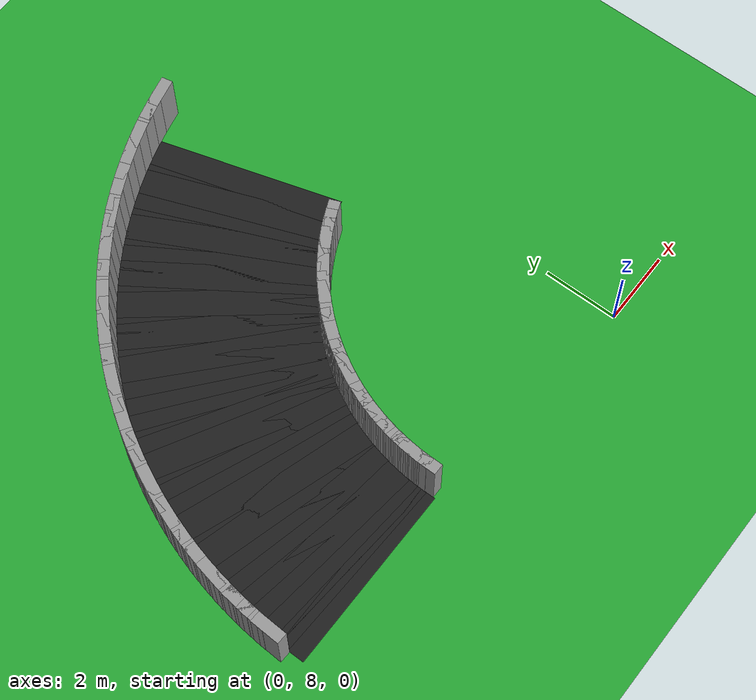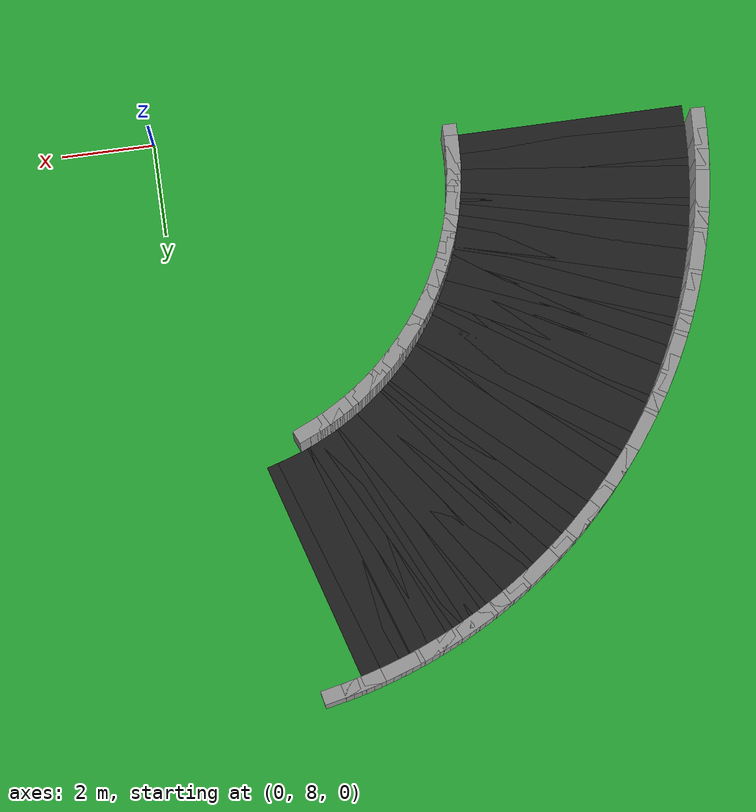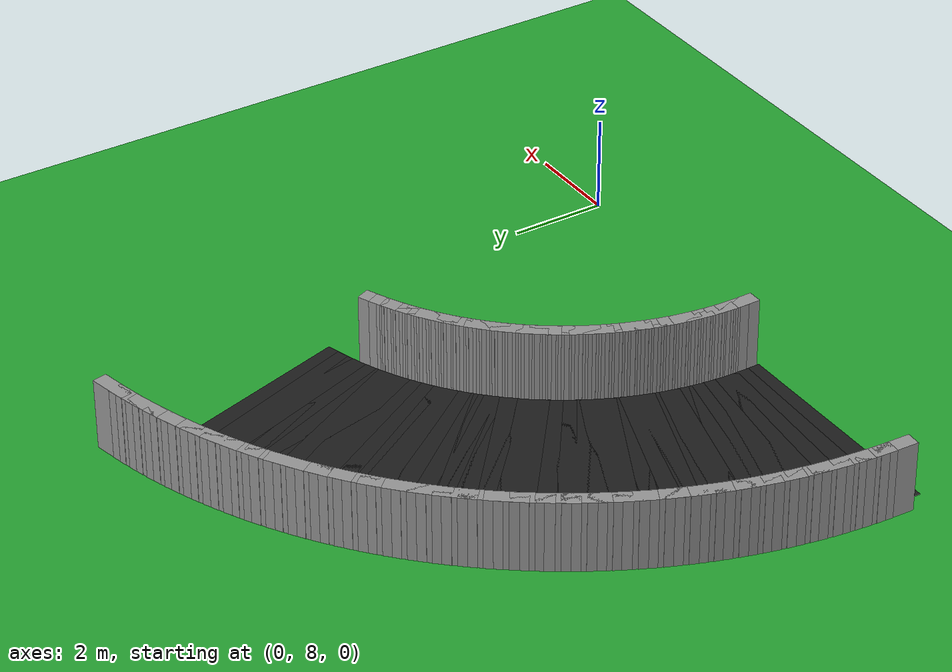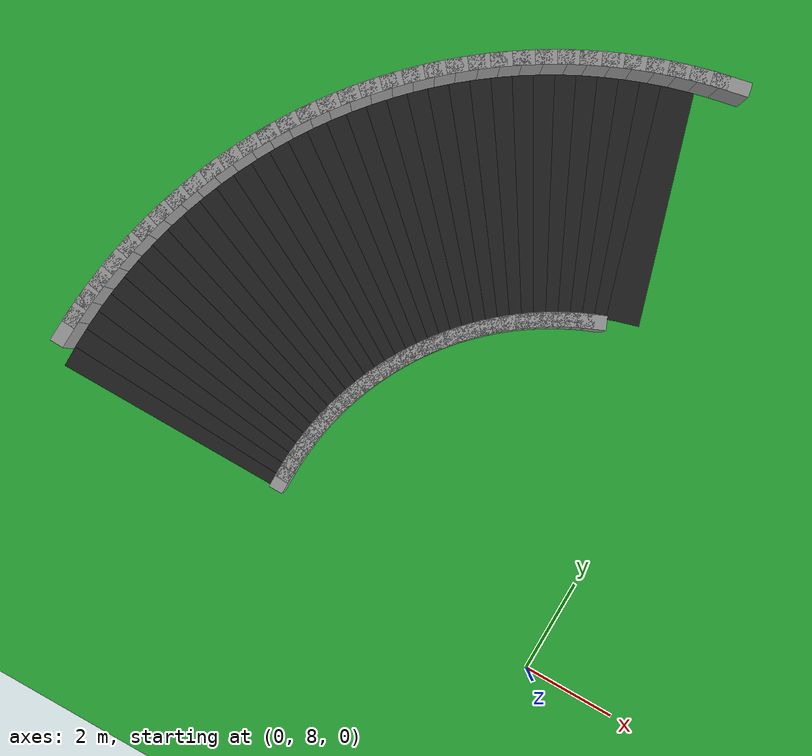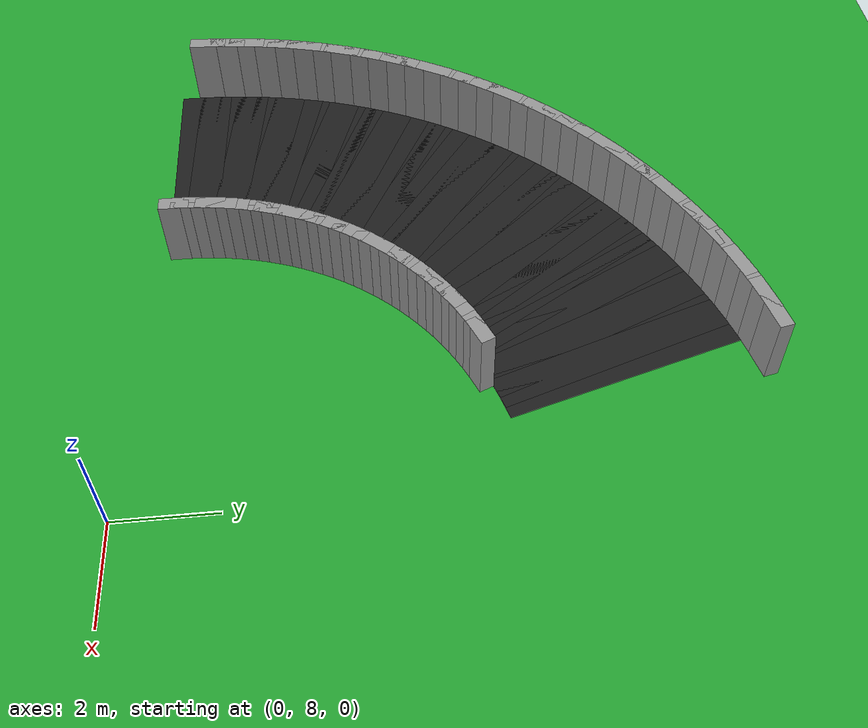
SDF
<sdf version="1.6">
 <world name="loop_stadium">
  <include><uri>model://sun</uri></include>
  <model name="ground_plane">
   <static>true</static>
   <link name="link">
    <collision name="collision">
     <surface><friction><ode><mu>100</mu><mu2>50</mu2></ode></friction></surface>
     <geometry><plane><normal>0 0 1</normal><size>120 120</size></plane></geometry>
    </collision>
    <visual name="visual">
     <geometry><plane><normal>0 0 1</normal><size>120 120</size></plane></geometry>
     <material>
      <script><uri>file://media/materials/scripts/gazebo.material</uri><name>Gazebo/Green</name></script>
     </material>
    </visual>
   </link>
  </model>
  <model name="curbR_224">
   <static>true</static>
   <pose>-2.466 20.385 0.750 0 0 -2.92827</pose>
   <link name="link">
    <collision name="collision"><geometry><box><size>0.812 0.300 1.500</size></box></geometry></collision>
    <visual name="visual">
     <geometry><box><size>0.812 0.300 1.500</size></box></geometry>
     <material>
      <script><uri>file://media/materials/scripts/gazebo.material</uri><name>Gazebo/Grey</name></script>
     </material>
    </visual>
   </link>
  </model>
  <model name="curbR_225">
   <static>true</static>
   <pose>-2.906 20.281 0.750 0 0 -2.88949</pose>
   <link name="link">
    <collision name="collision"><geometry><box><size>0.812 0.300 1.500</size></box></geometry></collision>
    <visual name="visual">
     <geometry><box><size>0.812 0.300 1.500</size></box></geometry>
     <material>
      <script><uri>file://media/materials/scripts/gazebo.material</uri><name>Gazebo/Grey</name></script>
     </material>
    </visual>
   </link>
  </model>
  <model name="asphalt_226">
   <static>true</static>
   <pose>-2.581 17.621 0.005 0 0 -2.85070</pose>
   <link name="link">
    <visual name="visual">
     <geometry><box><size>0.709 5.000 0.010</size></box></geometry>
     <material>
      <script><uri>file://media/materials/scripts/gazebo.material</uri><name>Gazebo/Black</name></script>
     </material>
    </visual>
   </link>
  </model>
  <model name="curbR_226">
   <static>true</static>
   <pose>-3.341 20.160 0.750 0 0 -2.85070</pose>
   <link name="link">
    <collision name="collision"><geometry><box><size>0.812 0.300 1.500</size></box></geometry></collision>
    <visual name="visual">
     <geometry><box><size>0.812 0.300 1.500</size></box></geometry>
     <material>
      <script><uri>file://media/materials/scripts/gazebo.material</uri><name>Gazebo/Grey</name></script>
     </material>
    </visual>
   </link>
  </model>
  <model name="asphalt_227">
   <static>true</static>
   <pose>-2.913 17.515 0.005 0 0 -2.81192</pose>
   <link name="link">
    <visual name="visual">
     <geometry><box><size>0.709 5.000 0.010</size></box></geometry>
     <material>
      <script><uri>file://media/materials/scripts/gazebo.material</uri><name>Gazebo/Black</name></script>
     </material>
    </visual>
   </link>
  </model>
  <model name="curbR_227">
   <static>true</static>
   <pose>-3.771 20.022 0.750 0 0 -2.81192</pose>
   <link name="link">
    <collision name="collision"><geometry><box><size>0.812 0.300 1.500</size></box></geometry></collision>
    <visual name="visual">
     <geometry><box><size>0.812 0.300 1.500</size></box></geometry>
     <material>
      <script><uri>file://media/materials/scripts/gazebo.material</uri><name>Gazebo/Grey</name></script>
     </material>
    </visual>
   </link>
  </model>
  <model name="asphalt_228">
   <static>true</static>
   <pose>-3.241 17.395 0.005 0 0 -2.77313</pose>
   <link name="link">
    <visual name="visual">
     <geometry><box><size>0.709 5.000 0.010</size></box></geometry>
     <material>
      <script><uri>file://media/materials/scripts/gazebo.material</uri><name>Gazebo/Black</name></script>
     </material>
    </visual>
   </link>
  </model>
  <model name="curbR_228">
   <static>true</static>
   <pose>-4.195 19.867 0.750 0 0 -2.77313</pose>
   <link name="link">
    <collision name="collision"><geometry><box><size>0.812 0.300 1.500</size></box></geometry></collision>
    <visual name="visual">
     <geometry><box><size>0.812 0.300 1.500</size></box></geometry>
     <material>
      <script><uri>file://media/materials/scripts/gazebo.material</uri><name>Gazebo/Grey</name></script>
     </material>
    </visual>
   </link>
  </model>
  <model name="asphalt_229">
   <static>true</static>
   <pose>-3.564 17.263 0.005 0 0 -2.73435</pose>
   <link name="link">
    <visual name="visual">
     <geometry><box><size>0.709 5.000 0.010</size></box></geometry>
     <material>
      <script><uri>file://media/materials/scripts/gazebo.material</uri><name>Gazebo/Black</name></script>
     </material>
    </visual>
   </link>
  </model>
  <model name="curbL_229">
   <static>true</static>
   <pose>-2.515 14.831 0.750 0 0 -2.73435</pose>
   <link name="link">
    <collision name="collision"><geometry><box><size>0.606 0.300 1.500</size></box></geometry></collision>
    <visual name="visual">
     <geometry><box><size>0.606 0.300 1.500</size></box></geometry>
     <material>
      <script><uri>file://media/materials/scripts/gazebo.material</uri><name>Gazebo/Grey</name></script>
     </material>
    </visual>
   </link>
  </model>
  <model name="curbR_229">
   <static>true</static>
   <pose>-4.614 19.696 0.750 0 0 -2.73435</pose>
   <link name="link">
    <collision name="collision"><geometry><box><size>0.812 0.300 1.500</size></box></geometry></collision>
    <visual name="visual">
     <geometry><box><size>0.812 0.300 1.500</size></box></geometry>
     <material>
      <script><uri>file://media/materials/scripts/gazebo.material</uri><name>Gazebo/Grey</name></script>
     </material>
    </visual>
   </link>
  </model>
  <model name="asphalt_230">
   <static>true</static>
   <pose>-3.882 17.119 0.005 0 0 -2.69556</pose>
   <link name="link">
    <visual name="visual">
     <geometry><box><size>0.709 5.000 0.010</size></box></geometry>
     <material>
      <script><uri>file://media/materials/scripts/gazebo.material</uri><name>Gazebo/Black</name></script>
     </material>
    </visual>
   </link>
  </model>
  <model name="curbL_230">
   <static>true</static>
   <pose>-2.739 14.729 0.750 0 0 -2.69556</pose>
   <link name="link">
    <collision name="collision"><geometry><box><size>0.606 0.300 1.500</size></box></geometry></collision>
    <visual name="visual">
     <geometry><box><size>0.606 0.300 1.500</size></box></geometry>
     <material>
      <script><uri>file://media/materials/scripts/gazebo.material</uri><name>Gazebo/Grey</name></script>
     </material>
    </visual>
   </link>
  </model>
  <model name="curbR_230">
   <static>true</static>
   <pose>-5.025 19.509 0.750 0 0 -2.69556</pose>
   <link name="link">
    <collision name="collision"><geometry><box><size>0.812 0.300 1.500</size></box></geometry></collision>
    <visual name="visual">
     <geometry><box><size>0.812 0.300 1.500</size></box></geometry>
     <material>
      <script><uri>file://media/materials/scripts/gazebo.material</uri><name>Gazebo/Grey</name></script>
     </material>
    </visual>
   </link>
  </model>
  <model name="asphalt_231">
   <static>true</static>
   <pose>-4.194 16.962 0.005 0 0 -2.65678</pose>
   <link name="link">
    <visual name="visual">
     <geometry><box><size>0.709 5.000 0.010</size></box></geometry>
     <material>
      <script><uri>file://media/materials/scripts/gazebo.material</uri><name>Gazebo/Black</name></script>
     </material>
    </visual>
   </link>
  </model>
  <model name="curbL_231">
   <static>true</static>
   <pose>-2.959 14.618 0.750 0 0 -2.65678</pose>
   <link name="link">
    <collision name="collision"><geometry><box><size>0.606 0.300 1.500</size></box></geometry></collision>
    <visual name="visual">
     <geometry><box><size>0.606 0.300 1.500</size></box></geometry>
     <material>
      <script><uri>file://media/materials/scripts/gazebo.material</uri><name>Gazebo/Grey</name></script>
     </material>
    </visual>
   </link>
  </model>
  <model name="curbR_231">
   <static>true</static>
   <pose>-5.429 19.307 0.750 0 0 -2.65678</pose>
   <link name="link">
    <collision name="collision"><geometry><box><size>0.812 0.300 1.500</size></box></geometry></collision>
    <visual name="visual">
     <geometry><box><size>0.812 0.300 1.500</size></box></geometry>
     <material>
      <script><uri>file://media/materials/scripts/gazebo.material</uri><name>Gazebo/Grey</name></script>
     </material>
    </visual>
   </link>
  </model>
  <model name="asphalt_232">
   <static>true</static>
   <pose>-4.499 16.794 0.005 0 0 -2.61799</pose>
   <link name="link">
    <visual name="visual">
     <geometry><box><size>0.709 5.000 0.010</size></box></geometry>
     <material>
      <script><uri>file://media/materials/scripts/gazebo.material</uri><name>Gazebo/Black</name></script>
     </material>
    </visual>
   </link>
  </model>
  <model name="curbL_232">
   <static>true</static>
   <pose>-3.175 14.499 0.750 0 0 -2.61799</pose>
   <link name="link">
    <collision name="collision"><geometry><box><size>0.606 0.300 1.500</size></box></geometry></collision>
    <visual name="visual">
     <geometry><box><size>0.606 0.300 1.500</size></box></geometry>
     <material>
      <script><uri>file://media/materials/scripts/gazebo.material</uri><name>Gazebo/Grey</name></script>
     </material>
    </visual>
   </link>
  </model>
  <model name="curbR_232">
   <static>true</static>
   <pose>-5.824 19.088 0.750 0 0 -2.61799</pose>
   <link name="link">
    <collision name="collision"><geometry><box><size>0.812 0.300 1.500</size></box></geometry></collision>
    <visual name="visual">
     <geometry><box><size>0.812 0.300 1.500</size></box></geometry>
     <material>
      <script><uri>file://media/materials/scripts/gazebo.material</uri><name>Gazebo/Grey</name></script>
     </material>
    </visual>
   </link>
  </model>
  <model name="asphalt_233">
   <static>true</static>
   <pose>-4.798 16.613 0.005 0 0 -2.57921</pose>
   <link name="link">
    <visual name="visual">
     <geometry><box><size>0.709 5.000 0.010</size></box></geometry>
     <material>
      <script><uri>file://media/materials/scripts/gazebo.material</uri><name>Gazebo/Black</name></script>
     </material>
    </visual>
   </link>
  </model>
  <model name="curbL_233">
   <static>true</static>
   <pose>-3.386 14.372 0.750 0 0 -2.57921</pose>
   <link name="link">
    <collision name="collision"><geometry><box><size>0.606 0.300 1.500</size></box></geometry></collision>
    <visual name="visual">
     <geometry><box><size>0.606 0.300 1.500</size></box></geometry>
     <material>
      <script><uri>file://media/materials/scripts/gazebo.material</uri><name>Gazebo/Grey</name></script>
     </material>
    </visual>
   </link>
  </model>
  <model name="curbR_233">
   <static>true</static>
   <pose>-6.211 18.855 0.750 0 0 -2.57921</pose>
   <link name="link">
    <collision name="collision"><geometry><box><size>0.812 0.300 1.500</size></box></geometry></collision>
    <visual name="visual">
     <geometry><box><size>0.812 0.300 1.500</size></box></geometry>
     <material>
      <script><uri>file://media/materials/scripts/gazebo.material</uri><name>Gazebo/Grey</name></script>
     </material>
    </visual>
   </link>
  </model>
  <model name="asphalt_234">
   <static>true</static>
   <pose>-5.090 16.422 0.005 0 0 -2.54042</pose>
   <link name="link">
    <visual name="visual">
     <geometry><box><size>0.709 5.000 0.010</size></box></geometry>
     <material>
      <script><uri>file://media/materials/scripts/gazebo.material</uri><name>Gazebo/Black</name></script>
     </material>
    </visual>
   </link>
  </model>
  <model name="curbL_234">
   <static>true</static>
   <pose>-3.591 14.237 0.750 0 0 -2.54042</pose>
   <link name="link">
    <collision name="collision"><geometry><box><size>0.606 0.300 1.500</size></box></geometry></collision>
    <visual name="visual">
     <geometry><box><size>0.606 0.300 1.500</size></box></geometry>
     <material>
      <script><uri>file://media/materials/scripts/gazebo.material</uri><name>Gazebo/Grey</name></script>
     </material>
    </visual>
   </link>
  </model>
  <model name="curbR_234">
   <static>true</static>
   <pose>-6.588 18.607 0.750 0 0 -2.54042</pose>
   <link name="link">
    <collision name="collision"><geometry><box><size>0.812 0.300 1.500</size></box></geometry></collision>
    <visual name="visual">
     <geometry><box><size>0.812 0.300 1.500</size></box></geometry>
     <material>
      <script><uri>file://media/materials/scripts/gazebo.material</uri><name>Gazebo/Grey</name></script>
     </material>
    </visual>
   </link>
  </model>
  <model name="asphalt_235">
   <static>true</static>
   <pose>-5.374 16.219 0.005 0 0 -2.50164</pose>
   <link name="link">
    <visual name="visual">
     <geometry><box><size>0.709 5.000 0.010</size></box></geometry>
     <material>
      <script><uri>file://media/materials/scripts/gazebo.material</uri><name>Gazebo/Black</name></script>
     </material>
    </visual>
   </link>
  </model>
  <model name="curbL_235">
   <static>true</static>
   <pose>-3.792 14.094 0.750 0 0 -2.50164</pose>
   <link name="link">
    <collision name="collision"><geometry><box><size>0.606 0.300 1.500</size></box></geometry></collision>
    <visual name="visual">
     <geometry><box><size>0.606 0.300 1.500</size></box></geometry>
     <material>
      <script><uri>file://media/materials/scripts/gazebo.material</uri><name>Gazebo/Grey</name></script>
     </material>
    </visual>
   </link>
  </model>
  <model name="curbR_235">
   <static>true</static>
   <pose>-6.956 18.344 0.750 0 0 -2.50164</pose>
   <link name="link">
    <collision name="collision"><geometry><box><size>0.812 0.300 1.500</size></box></geometry></collision>
    <visual name="visual">
     <geometry><box><size>0.812 0.300 1.500</size></box></geometry>
     <material>
      <script><uri>file://media/materials/scripts/gazebo.material</uri><name>Gazebo/Grey</name></script>
     </material>
    </visual>
   </link>
  </model>
  <model name="asphalt_236">
   <static>true</static>
   <pose>-5.650 16.005 0.005 0 0 -2.46285</pose>
   <link name="link">
    <visual name="visual">
     <geometry><box><size>0.709 5.000 0.010</size></box></geometry>
     <material>
      <script><uri>file://media/materials/scripts/gazebo.material</uri><name>Gazebo/Black</name></script>
     </material>
    </visual>
   </link>
  </model>
  <model name="curbL_236">
   <static>true</static>
   <pose>-3.986 13.943 0.750 0 0 -2.46285</pose>
   <link name="link">
    <collision name="collision"><geometry><box><size>0.606 0.300 1.500</size></box></geometry></collision>
    <visual name="visual">
     <geometry><box><size>0.606 0.300 1.500</size></box></geometry>
     <material>
      <script><uri>file://media/materials/scripts/gazebo.material</uri><name>Gazebo/Grey</name></script>
     </material>
    </visual>
   </link>
  </model>
  <model name="curbR_236">
   <static>true</static>
   <pose>-7.313 18.067 0.750 0 0 -2.46285</pose>
   <link name="link">
    <collision name="collision"><geometry><box><size>0.812 0.300 1.500</size></box></geometry></collision>
    <visual name="visual">
     <geometry><box><size>0.812 0.300 1.500</size></box></geometry>
     <material>
      <script><uri>file://media/materials/scripts/gazebo.material</uri><name>Gazebo/Grey</name></script>
     </material>
    </visual>
   </link>
  </model>
  <model name="asphalt_237">
   <static>true</static>
   <pose>-5.917 15.781 0.005 0 0 -2.42407</pose>
   <link name="link">
    <visual name="visual">
     <geometry><box><size>0.709 5.000 0.010</size></box></geometry>
     <material>
      <script><uri>file://media/materials/scripts/gazebo.material</uri><name>Gazebo/Black</name></script>
     </material>
    </visual>
   </link>
  </model>
  <model name="curbL_237">
   <static>true</static>
   <pose>-4.175 13.784 0.750 0 0 -2.42407</pose>
   <link name="link">
    <collision name="collision"><geometry><box><size>0.606 0.300 1.500</size></box></geometry></collision>
    <visual name="visual">
     <geometry><box><size>0.606 0.300 1.500</size></box></geometry>
     <material>
      <script><uri>file://media/materials/scripts/gazebo.material</uri><name>Gazebo/Grey</name></script>
     </material>
    </visual>
   </link>
  </model>
  <model name="curbR_237">
   <static>true</static>
   <pose>-7.659 17.777 0.750 0 0 -2.42407</pose>
   <link name="link">
    <collision name="collision"><geometry><box><size>0.812 0.300 1.500</size></box></geometry></collision>
    <visual name="visual">
     <geometry><box><size>0.812 0.300 1.500</size></box></geometry>
     <material>
      <script><uri>file://media/materials/scripts/gazebo.material</uri><name>Gazebo/Grey</name></script>
     </material>
    </visual>
   </link>
  </model>
  <model name="asphalt_238">
   <static>true</static>
   <pose>-6.175 15.546 0.005 0 0 -2.38528</pose>
   <link name="link">
    <visual name="visual">
     <geometry><box><size>0.709 5.000 0.010</size></box></geometry>
     <material>
      <script><uri>file://media/materials/scripts/gazebo.material</uri><name>Gazebo/Black</name></script>
     </material>
    </visual>
   </link>
  </model>
  <model name="curbL_238">
   <static>true</static>
   <pose>-4.357 13.619 0.750 0 0 -2.38528</pose>
   <link name="link">
    <collision name="collision"><geometry><box><size>0.606 0.300 1.500</size></box></geometry></collision>
    <visual name="visual">
     <geometry><box><size>0.606 0.300 1.500</size></box></geometry>
     <material>
      <script><uri>file://media/materials/scripts/gazebo.material</uri><name>Gazebo/Grey</name></script>
     </material>
    </visual>
   </link>
  </model>
  <model name="curbR_238">
   <static>true</static>
   <pose>-7.994 17.473 0.750 0 0 -2.38528</pose>
   <link name="link">
    <collision name="collision"><geometry><box><size>0.812 0.300 1.500</size></box></geometry></collision>
    <visual name="visual">
     <geometry><box><size>0.812 0.300 1.500</size></box></geometry>
     <material>
      <script><uri>file://media/materials/scripts/gazebo.material</uri><name>Gazebo/Grey</name></script>
     </material>
    </visual>
   </link>
  </model>
  <model name="asphalt_239">
   <static>true</static>
   <pose>-6.425 15.302 0.005 0 0 -2.34650</pose>
   <link name="link">
    <visual name="visual">
     <geometry><box><size>0.709 5.000 0.010</size></box></geometry>
     <material>
      <script><uri>file://media/materials/scripts/gazebo.material</uri><name>Gazebo/Black</name></script>
     </material>
    </visual>
   </link>
  </model>
  <model name="curbL_239">
   <static>true</static>
   <pose>-4.533 13.447 0.750 0 0 -2.34650</pose>
   <link name="link">
    <collision name="collision"><geometry><box><size>0.606 0.300 1.500</size></box></geometry></collision>
    <visual name="visual">
     <geometry><box><size>0.606 0.300 1.500</size></box></geometry>
     <material>
      <script><uri>file://media/materials/scripts/gazebo.material</uri><name>Gazebo/Grey</name></script>
     </material>
    </visual>
   </link>
  </model>
  <model name="curbR_239">
   <static>true</static>
   <pose>-8.316 17.157 0.750 0 0 -2.34650</pose>
   <link name="link">
    <collision name="collision"><geometry><box><size>0.812 0.300 1.500</size></box></geometry></collision>
    <visual name="visual">
     <geometry><box><size>0.812 0.300 1.500</size></box></geometry>
     <material>
      <script><uri>file://media/materials/scripts/gazebo.material</uri><name>Gazebo/Grey</name></script>
     </material>
    </visual>
   </link>
  </model>
  <model name="asphalt_240">
   <static>true</static>
   <pose>-6.664 15.048 0.005 0 0 -2.30771</pose>
   <link name="link">
    <visual name="visual">
     <geometry><box><size>0.709 5.000 0.010</size></box></geometry>
     <material>
      <script><uri>file://media/materials/scripts/gazebo.material</uri><name>Gazebo/Black</name></script>
     </material>
    </visual>
   </link>
  </model>
  <model name="curbL_240">
   <static>true</static>
   <pose>-4.702 13.267 0.750 0 0 -2.30771</pose>
   <link name="link">
    <collision name="collision"><geometry><box><size>0.606 0.300 1.500</size></box></geometry></collision>
    <visual name="visual">
     <geometry><box><size>0.606 0.300 1.500</size></box></geometry>
     <material>
      <script><uri>file://media/materials/scripts/gazebo.material</uri><name>Gazebo/Grey</name></script>
     </material>
    </visual>
   </link>
  </model>
  <model name="curbR_240">
   <static>true</static>
   <pose>-8.626 16.828 0.750 0 0 -2.30771</pose>
   <link name="link">
    <collision name="collision"><geometry><box><size>0.812 0.300 1.500</size></box></geometry></collision>
    <visual name="visual">
     <geometry><box><size>0.812 0.300 1.500</size></box></geometry>
     <material>
      <script><uri>file://media/materials/scripts/gazebo.material</uri><name>Gazebo/Grey</name></script>
     </material>
    </visual>
   </link>
  </model>
  <model name="asphalt_241">
   <static>true</static>
   <pose>-6.894 14.785 0.005 0 0 -2.26893</pose>
   <link name="link">
    <visual name="visual">
     <geometry><box><size>0.709 5.000 0.010</size></box></geometry>
     <material>
      <script><uri>file://media/materials/scripts/gazebo.material</uri><name>Gazebo/Black</name></script>
     </material>
    </visual>
   </link>
  </model>
  <model name="curbL_241">
   <static>true</static>
   <pose>-4.864 13.082 0.750 0 0 -2.26893</pose>
   <link name="link">
    <collision name="collision"><geometry><box><size>0.606 0.300 1.500</size></box></geometry></collision>
    <visual name="visual">
     <geometry><box><size>0.606 0.300 1.500</size></box></geometry>
     <material>
      <script><uri>file://media/materials/scripts/gazebo.material</uri><name>Gazebo/Grey</name></script>
     </material>
    </visual>
   </link>
  </model>
  <model name="curbR_241">
   <static>true</static>
   <pose>-8.923 16.488 0.750 0 0 -2.26893</pose>
   <link name="link">
    <collision name="collision"><geometry><box><size>0.812 0.300 1.500</size></box></geometry></collision>
    <visual name="visual">
     <geometry><box><size>0.812 0.300 1.500</size></box></geometry>
     <material>
      <script><uri>file://media/materials/scripts/gazebo.material</uri><name>Gazebo/Grey</name></script>
     </material>
    </visual>
   </link>
  </model>
  <model name="asphalt_242">
   <static>true</static>
   <pose>-7.113 14.513 0.005 0 0 -2.23014</pose>
   <link name="link">
    <visual name="visual">
     <geometry><box><size>0.709 5.000 0.010</size></box></geometry>
     <material>
      <script><uri>file://media/materials/scripts/gazebo.material</uri><name>Gazebo/Black</name></script>
     </material>
    </visual>
   </link>
  </model>
  <model name="curbL_242">
   <static>true</static>
   <pose>-5.018 12.890 0.750 0 0 -2.23014</pose>
   <link name="link">
    <collision name="collision"><geometry><box><size>0.606 0.300 1.500</size></box></geometry></collision>
    <visual name="visual">
     <geometry><box><size>0.606 0.300 1.500</size></box></geometry>
     <material>
      <script><uri>file://media/materials/scripts/gazebo.material</uri><name>Gazebo/Grey</name></script>
     </material>
    </visual>
   </link>
  </model>
  <model name="curbR_242">
   <static>true</static>
   <pose>-9.207 16.136 0.750 0 0 -2.23014</pose>
   <link name="link">
    <collision name="collision"><geometry><box><size>0.812 0.300 1.500</size></box></geometry></collision>
    <visual name="visual">
     <geometry><box><size>0.812 0.300 1.500</size></box></geometry>
     <material>
      <script><uri>file://media/materials/scripts/gazebo.material</uri><name>Gazebo/Grey</name></script>
     </material>
    </visual>
   </link>
  </model>
  <model name="asphalt_243">
   <static>true</static>
   <pose>-7.321 14.233 0.005 0 0 -2.19136</pose>
   <link name="link">
    <visual name="visual">
     <geometry><box><size>0.709 5.000 0.010</size></box></geometry>
     <material>
      <script><uri>file://media/materials/scripts/gazebo.material</uri><name>Gazebo/Black</name></script>
     </material>
    </visual>
   </link>
  </model>
  <model name="curbL_243">
   <static>true</static>
   <pose>-5.166 12.693 0.750 0 0 -2.19136</pose>
   <link name="link">
    <collision name="collision"><geometry><box><size>0.606 0.300 1.500</size></box></geometry></collision>
    <visual name="visual">
     <geometry><box><size>0.606 0.300 1.500</size></box></geometry>
     <material>
      <script><uri>file://media/materials/scripts/gazebo.material</uri><name>Gazebo/Grey</name></script>
     </material>
    </visual>
   </link>
  </model>
  <model name="curbR_243">
   <static>true</static>
   <pose>-9.477 15.774 0.750 0 0 -2.19136</pose>
   <link name="link">
    <collision name="collision"><geometry><box><size>0.812 0.300 1.500</size></box></geometry></collision>
    <visual name="visual">
     <geometry><box><size>0.812 0.300 1.500</size></box></geometry>
     <material>
      <script><uri>file://media/materials/scripts/gazebo.material</uri><name>Gazebo/Grey</name></script>
     </material>
    </visual>
   </link>
  </model>
  <model name="asphalt_244">
   <static>true</static>
   <pose>-7.518 13.946 0.005 0 0 -2.15257</pose>
   <link name="link">
    <visual name="visual">
     <geometry><box><size>0.709 5.000 0.010</size></box></geometry>
     <material>
      <script><uri>file://media/materials/scripts/gazebo.material</uri><name>Gazebo/Black</name></script>
     </material>
    </visual>
   </link>
  </model>
  <model name="curbL_244">
   <static>true</static>
   <pose>-5.305 12.490 0.750 0 0 -2.15257</pose>
   <link name="link">
    <collision name="collision"><geometry><box><size>0.606 0.300 1.500</size></box></geometry></collision>
    <visual name="visual">
     <geometry><box><size>0.606 0.300 1.500</size></box></geometry>
     <material>
      <script><uri>file://media/materials/scripts/gazebo.material</uri><name>Gazebo/Grey</name></script>
     </material>
    </visual>
   </link>
  </model>
  <model name="curbR_244">
   <static>true</static>
   <pose>-9.732 15.401 0.750 0 0 -2.15257</pose>
   <link name="link">
    <collision name="collision"><geometry><box><size>0.812 0.300 1.500</size></box></geometry></collision>
    <visual name="visual">
     <geometry><box><size>0.812 0.300 1.500</size></box></geometry>
     <material>
      <script><uri>file://media/materials/scripts/gazebo.material</uri><name>Gazebo/Grey</name></script>
     </material>
    </visual>
   </link>
  </model>
  <model name="asphalt_245">
   <static>true</static>
   <pose>-7.705 13.650 0.005 0 0 -2.11379</pose>
   <link name="link">
    <visual name="visual">
     <geometry><box><size>0.709 5.000 0.010</size></box></geometry>
     <material>
      <script><uri>file://media/materials/scripts/gazebo.material</uri><name>Gazebo/Black</name></script>
     </material>
    </visual>
   </link>
  </model>
  <model name="curbL_245">
   <static>true</static>
   <pose>-5.436 12.281 0.750 0 0 -2.11379</pose>
   <link name="link">
    <collision name="collision"><geometry><box><size>0.606 0.300 1.500</size></box></geometry></collision>
    <visual name="visual">
     <geometry><box><size>0.606 0.300 1.500</size></box></geometry>
     <material>
      <script><uri>file://media/materials/scripts/gazebo.material</uri><name>Gazebo/Grey</name></script>
     </material>
    </visual>
   </link>
  </model>
  <model name="curbR_245">
   <static>true</static>
   <pose>-9.973 15.019 0.750 0 0 -2.11379</pose>
   <link name="link">
    <collision name="collision"><geometry><box><size>0.812 0.300 1.500</size></box></geometry></collision>
    <visual name="visual">
     <geometry><box><size>0.812 0.300 1.500</size></box></geometry>
     <material>
      <script><uri>file://media/materials/scripts/gazebo.material</uri><name>Gazebo/Grey</name></script>
     </material>
    </visual>
   </link>
  </model>
  <model name="asphalt_246">
   <static>true</static>
   <pose>-7.879 13.348 0.005 0 0 -2.07500</pose>
   <link name="link">
    <visual name="visual">
     <geometry><box><size>0.709 5.000 0.010</size></box></geometry>
     <material>
      <script><uri>file://media/materials/scripts/gazebo.material</uri><name>Gazebo/Black</name></script>
     </material>
    </visual>
   </link>
  </model>
  <model name="curbL_246">
   <static>true</static>
   <pose>-5.559 12.068 0.750 0 0 -2.07500</pose>
   <link name="link">
    <collision name="collision"><geometry><box><size>0.606 0.300 1.500</size></box></geometry></collision>
    <visual name="visual">
     <geometry><box><size>0.606 0.300 1.500</size></box></geometry>
     <material>
      <script><uri>file://media/materials/scripts/gazebo.material</uri><name>Gazebo/Grey</name></script>
     </material>
    </visual>
   </link>
  </model>
  <model name="curbR_246">
   <static>true</static>
   <pose>-10.199 14.628 0.750 0 0 -2.07500</pose>
   <link name="link">
    <collision name="collision"><geometry><box><size>0.812 0.300 1.500</size></box></geometry></collision>
    <visual name="visual">
     <geometry><box><size>0.812 0.300 1.500</size></box></geometry>
     <material>
      <script><uri>file://media/materials/scripts/gazebo.material</uri><name>Gazebo/Grey</name></script>
     </material>
    </visual>
   </link>
  </model>
  <model name="asphalt_247">
   <static>true</static>
   <pose>-8.042 13.039 0.005 0 0 -2.03622</pose>
   <link name="link">
    <visual name="visual">
     <geometry><box><size>0.709 5.000 0.010</size></box></geometry>
     <material>
      <script><uri>file://media/materials/scripts/gazebo.material</uri><name>Gazebo/Black</name></script>
     </material>
    </visual>
   </link>
  </model>
  <model name="curbL_247">
   <static>true</static>
   <pose>-5.674 11.850 0.750 0 0 -2.03622</pose>
   <link name="link">
    <collision name="collision"><geometry><box><size>0.606 0.300 1.500</size></box></geometry></collision>
    <visual name="visual">
     <geometry><box><size>0.606 0.300 1.500</size></box></geometry>
     <material>
      <script><uri>file://media/materials/scripts/gazebo.material</uri><name>Gazebo/Grey</name></script>
     </material>
    </visual>
   </link>
  </model>
  <model name="curbR_247">
   <static>true</static>
   <pose>-10.409 14.228 0.750 0 0 -2.03622</pose>
   <link name="link">
    <collision name="collision"><geometry><box><size>0.812 0.300 1.500</size></box></geometry></collision>
    <visual name="visual">
     <geometry><box><size>0.812 0.300 1.500</size></box></geometry>
     <material>
      <script><uri>file://media/materials/scripts/gazebo.material</uri><name>Gazebo/Grey</name></script>
     </material>
    </visual>
   </link>
  </model>
  <model name="asphalt_248">
   <static>true</static>
   <pose>-8.192 12.724 0.005 0 0 -1.99743</pose>
   <link name="link">
    <visual name="visual">
     <geometry><box><size>0.709 5.000 0.010</size></box></geometry>
     <material>
      <script><uri>file://media/materials/scripts/gazebo.material</uri><name>Gazebo/Black</name></script>
     </material>
    </visual>
   </link>
  </model>
  <model name="curbL_248">
   <static>true</static>
   <pose>-5.780 11.628 0.750 0 0 -1.99743</pose>
   <link name="link">
    <collision name="collision"><geometry><box><size>0.606 0.300 1.500</size></box></geometry></collision>
    <visual name="visual">
     <geometry><box><size>0.606 0.300 1.500</size></box></geometry>
     <material>
      <script><uri>file://media/materials/scripts/gazebo.material</uri><name>Gazebo/Grey</name></script>
     </material>
    </visual>
   </link>
  </model>
  <model name="curbR_248">
   <static>true</static>
   <pose>-10.604 13.821 0.750 0 0 -1.99743</pose>
   <link name="link">
    <collision name="collision"><geometry><box><size>0.812 0.300 1.500</size></box></geometry></collision>
    <visual name="visual">
     <geometry><box><size>0.812 0.300 1.500</size></box></geometry>
     <material>
      <script><uri>file://media/materials/scripts/gazebo.material</uri><name>Gazebo/Grey</name></script>
     </material>
    </visual>
   </link>
  </model>
  <model name="asphalt_249">
   <static>true</static>
   <pose>-8.330 12.404 0.005 0 0 -1.95865</pose>
   <link name="link">
    <visual name="visual">
     <geometry><box><size>0.709 5.000 0.010</size></box></geometry>
     <material>
      <script><uri>file://media/materials/scripts/gazebo.material</uri><name>Gazebo/Black</name></script>
     </material>
    </visual>
   </link>
  </model>
  <model name="curbL_249">
   <static>true</static>
   <pose>-5.878 11.402 0.750 0 0 -1.95865</pose>
   <link name="link">
    <collision name="collision"><geometry><box><size>0.606 0.300 1.500</size></box></geometry></collision>
    <visual name="visual">
     <geometry><box><size>0.606 0.300 1.500</size></box></geometry>
     <material>
      <script><uri>file://media/materials/scripts/gazebo.material</uri><name>Gazebo/Grey</name></script>
     </material>
    </visual>
   </link>
  </model>
  <model name="curbR_249">
   <static>true</static>
   <pose>-10.783 13.406 0.750 0 0 -1.95865</pose>
   <link name="link">
    <collision name="collision"><geometry><box><size>0.812 0.300 1.500</size></box></geometry></collision>
    <visual name="visual">
     <geometry><box><size>0.812 0.300 1.500</size></box></geometry>
     <material>
      <script><uri>file://media/materials/scripts/gazebo.material</uri><name>Gazebo/Grey</name></script>
     </material>
    </visual>
   </link>
  </model>
  <model name="asphalt_250">
   <static>true</static>
   <pose>-8.456 12.078 0.005 0 0 -1.91986</pose>
   <link name="link">
    <visual name="visual">
     <geometry><box><size>0.709 5.000 0.010</size></box></geometry>
     <material>
      <script><uri>file://media/materials/scripts/gazebo.material</uri><name>Gazebo/Black</name></script>
     </material>
    </visual>
   </link>
  </model>
  <model name="curbL_250">
   <static>true</static>
   <pose>-5.966 11.172 0.750 0 0 -1.91986</pose>
   <link name="link">
    <collision name="collision"><geometry><box><size>0.606 0.300 1.500</size></box></geometry></collision>
    <visual name="visual">
     <geometry><box><size>0.606 0.300 1.500</size></box></geometry>
     <material>
      <script><uri>file://media/materials/scripts/gazebo.material</uri><name>Gazebo/Grey</name></script>
     </material>
    </visual>
   </link>
  </model>
  <model name="curbR_250">
   <static>true</static>
   <pose>-10.946 12.985 0.750 0 0 -1.91986</pose>
   <link name="link">
    <collision name="collision"><geometry><box><size>0.812 0.300 1.500</size></box></geometry></collision>
    <visual name="visual">
     <geometry><box><size>0.812 0.300 1.500</size></box></geometry>
     <material>
      <script><uri>file://media/materials/scripts/gazebo.material</uri><name>Gazebo/Grey</name></script>
     </material>
    </visual>
   </link>
  </model>
  <model name="asphalt_251">
   <static>true</static>
   <pose>-8.569 11.748 0.005 0 0 -1.88108</pose>
   <link name="link">
    <visual name="visual">
     <geometry><box><size>0.709 5.000 0.010</size></box></geometry>
     <material>
      <script><uri>file://media/materials/scripts/gazebo.material</uri><name>Gazebo/Black</name></script>
     </material>
    </visual>
   </link>
  </model>
  <model name="curbL_251">
   <static>true</static>
   <pose>-6.046 10.939 0.750 0 0 -1.88108</pose>
   <link name="link">
    <collision name="collision"><geometry><box><size>0.606 0.300 1.500</size></box></geometry></collision>
    <visual name="visual">
     <geometry><box><size>0.606 0.300 1.500</size></box></geometry>
     <material>
      <script><uri>file://media/materials/scripts/gazebo.material</uri><name>Gazebo/Grey</name></script>
     </material>
    </visual>
   </link>
  </model>
  <model name="curbR_251">
   <static>true</static>
   <pose>-11.092 12.557 0.750 0 0 -1.88108</pose>
   <link name="link">
    <collision name="collision"><geometry><box><size>0.812 0.300 1.500</size></box></geometry></collision>
    <visual name="visual">
     <geometry><box><size>0.812 0.300 1.500</size></box></geometry>
     <material>
      <script><uri>file://media/materials/scripts/gazebo.material</uri><name>Gazebo/Grey</name></script>
     </material>
    </visual>
   </link>
  </model>
  <model name="asphalt_252">
   <static>true</static>
   <pose>-8.669 11.414 0.005 0 0 -1.84229</pose>
   <link name="link">
    <visual name="visual">
     <geometry><box><size>0.709 5.000 0.010</size></box></geometry>
     <material>
      <script><uri>file://media/materials/scripts/gazebo.material</uri><name>Gazebo/Black</name></script>
     </material>
    </visual>
   </link>
  </model>
  <model name="curbL_252">
   <static>true</static>
   <pose>-6.117 10.703 0.750 0 0 -1.84229</pose>
   <link name="link">
    <collision name="collision"><geometry><box><size>0.606 0.300 1.500</size></box></geometry></collision>
    <visual name="visual">
     <geometry><box><size>0.606 0.300 1.500</size></box></geometry>
     <material>
      <script><uri>file://media/materials/scripts/gazebo.material</uri><name>Gazebo/Grey</name></script>
     </material>
    </visual>
   </link>
  </model>
  <model name="curbR_252">
   <static>true</static>
   <pose>-11.222 12.124 0.750 0 0 -1.84229</pose>
   <link name="link">
    <collision name="collision"><geometry><box><size>0.812 0.300 1.500</size></box></geometry></collision>
    <visual name="visual">
     <geometry><box><size>0.812 0.300 1.500</size></box></geometry>
     <material>
      <script><uri>file://media/materials/scripts/gazebo.material</uri><name>Gazebo/Grey</name></script>
     </material>
    </visual>
   </link>
  </model>
  <model name="asphalt_253">
   <static>true</static>
   <pose>-8.756 11.076 0.005 0 0 -1.80351</pose>
   <link name="link">
    <visual name="visual">
     <geometry><box><size>0.709 5.000 0.010</size></box></geometry>
     <material>
      <script><uri>file://media/materials/scripts/gazebo.material</uri><name>Gazebo/Black</name></script>
     </material>
    </visual>
   </link>
  </model>
  <model name="curbL_253">
   <static>true</static>
   <pose>-6.178 10.465 0.750 0 0 -1.80351</pose>
   <link name="link">
    <collision name="collision"><geometry><box><size>0.606 0.300 1.500</size></box></geometry></collision>
    <visual name="visual">
     <geometry><box><size>0.606 0.300 1.500</size></box></geometry>
     <material>
      <script><uri>file://media/materials/scripts/gazebo.material</uri><name>Gazebo/Grey</name></script>
     </material>
    </visual>
   </link>
  </model>
  <model name="curbR_253">
   <static>true</static>
   <pose>-11.334 11.687 0.750 0 0 -1.80351</pose>
   <link name="link">
    <collision name="collision"><geometry><box><size>0.812 0.300 1.500</size></box></geometry></collision>
    <visual name="visual">
     <geometry><box><size>0.812 0.300 1.500</size></box></geometry>
     <material>
      <script><uri>file://media/materials/scripts/gazebo.material</uri><name>Gazebo/Grey</name></script>
     </material>
    </visual>
   </link>
  </model>
  <model name="asphalt_254">
   <static>true</static>
   <pose>-8.830 10.735 0.005 0 0 -1.76472</pose>
   <link name="link">
    <visual name="visual">
     <geometry><box><size>0.709 5.000 0.010</size></box></geometry>
     <material>
      <script><uri>file://media/materials/scripts/gazebo.material</uri><name>Gazebo/Black</name></script>
     </material>
    </visual>
   </link>
  </model>
  <model name="curbL_254">
   <static>true</static>
   <pose>-6.230 10.224 0.750 0 0 -1.76472</pose>
   <link name="link">
    <collision name="collision"><geometry><box><size>0.606 0.300 1.500</size></box></geometry></collision>
    <visual name="visual">
     <geometry><box><size>0.606 0.300 1.500</size></box></geometry>
     <material>
      <script><uri>file://media/materials/scripts/gazebo.material</uri><name>Gazebo/Grey</name></script>
     </material>
    </visual>
   </link>
  </model>
  <model name="curbR_254">
   <static>true</static>
   <pose>-11.430 11.245 0.750 0 0 -1.76472</pose>
   <link name="link">
    <collision name="collision"><geometry><box><size>0.812 0.300 1.500</size></box></geometry></collision>
    <visual name="visual">
     <geometry><box><size>0.812 0.300 1.500</size></box></geometry>
     <material>
      <script><uri>file://media/materials/scripts/gazebo.material</uri><name>Gazebo/Grey</name></script>
     </material>
    </visual>
   </link>
  </model>
  <model name="asphalt_255">
   <static>true</static>
   <pose>-8.891 10.391 0.005 0 0 -1.72594</pose>
   <link name="link">
    <visual name="visual">
     <geometry><box><size>0.709 5.000 0.010</size></box></geometry>
     <material>
      <script><uri>file://media/materials/scripts/gazebo.material</uri><name>Gazebo/Black</name></script>
     </material>
    </visual>
   </link>
  </model>
  <model name="curbL_255">
   <static>true</static>
   <pose>-6.273 9.982 0.750 0 0 -1.72594</pose>
   <link name="link">
    <collision name="collision"><geometry><box><size>0.606 0.300 1.500</size></box></geometry></collision>
    <visual name="visual">
     <geometry><box><size>0.606 0.300 1.500</size></box></geometry>
     <material>
      <script><uri>file://media/materials/scripts/gazebo.material</uri><name>Gazebo/Grey</name></script>
     </material>
    </visual>
   </link>
  </model>
  <model name="curbR_255">
   <static>true</static>
   <pose>-11.508 10.800 0.750 0 0 -1.72594</pose>
   <link name="link">
    <collision name="collision"><geometry><box><size>0.812 0.300 1.500</size></box></geometry></collision>
    <visual name="visual">
     <geometry><box><size>0.812 0.300 1.500</size></box></geometry>
     <material>
      <script><uri>file://media/materials/scripts/gazebo.material</uri><name>Gazebo/Grey</name></script>
     </material>
    </visual>
   </link>
  </model>
  <model name="asphalt_256">
   <static>true</static>
   <pose>-8.938 10.045 0.005 0 0 -1.68715</pose>
   <link name="link">
    <visual name="visual">
     <geometry><box><size>0.709 5.000 0.010</size></box></geometry>
     <material>
      <script><uri>file://media/materials/scripts/gazebo.material</uri><name>Gazebo/Black</name></script>
     </material>
    </visual>
   </link>
  </model>
  <model name="curbL_256">
   <static>true</static>
   <pose>-6.306 9.738 0.750 0 0 -1.68715</pose>
   <link name="link">
    <collision name="collision"><geometry><box><size>0.606 0.300 1.500</size></box></geometry></collision>
    <visual name="visual">
     <geometry><box><size>0.606 0.300 1.500</size></box></geometry>
     <material>
      <script><uri>file://media/materials/scripts/gazebo.material</uri><name>Gazebo/Grey</name></script>
     </material>
    </visual>
   </link>
  </model>
  <model name="curbR_256">
   <static>true</static>
   <pose>-11.570 10.353 0.750 0 0 -1.68715</pose>
   <link name="link">
    <collision name="collision"><geometry><box><size>0.812 0.300 1.500</size></box></geometry></collision>
    <visual name="visual">
     <geometry><box><size>0.812 0.300 1.500</size></box></geometry>
     <material>
      <script><uri>file://media/materials/scripts/gazebo.material</uri><name>Gazebo/Grey</name></script>
     </material>
    </visual>
   </link>
  </model>
  <model name="asphalt_257">
   <static>true</static>
   <pose>-8.972 9.698 0.005 0 0 -1.64837</pose>
   <link name="link">
    <visual name="visual">
     <geometry><box><size>0.709 5.000 0.010</size></box></geometry>
     <material>
      <script><uri>file://media/materials/scripts/gazebo.material</uri><name>Gazebo/Black</name></script>
     </material>
    </visual>
   </link>
  </model>
  <model name="curbL_257">
   <static>true</static>
   <pose>-6.330 9.493 0.750 0 0 -1.64837</pose>
   <link name="link">
    <collision name="collision"><geometry><box><size>0.606 0.300 1.500</size></box></geometry></collision>
    <visual name="visual">
     <geometry><box><size>0.606 0.300 1.500</size></box></geometry>
     <material>
      <script><uri>file://media/materials/scripts/gazebo.material</uri><name>Gazebo/Grey</name></script>
     </material>
    </visual>
   </link>
  </model>
  <model name="curbR_257">
   <static>true</static>
   <pose>-11.613 9.903 0.750 0 0 -1.64837</pose>
   <link name="link">
    <collision name="collision"><geometry><box><size>0.812 0.300 1.500</size></box></geometry></collision>
    <visual name="visual">
     <geometry><box><size>0.812 0.300 1.500</size></box></geometry>
     <material>
      <script><uri>file://media/materials/scripts/gazebo.material</uri><name>Gazebo/Grey</name></script>
     </material>
    </visual>
   </link>
  </model>
  <model name="asphalt_258">
   <static>true</static>
   <pose>-8.992 9.349 0.005 0 0 -1.60958</pose>
   <link name="link">
    <visual name="visual">
     <geometry><box><size>0.709 5.000 0.010</size></box></geometry>
     <material>
      <script><uri>file://media/materials/scripts/gazebo.material</uri><name>Gazebo/Black</name></script>
     </material>
    </visual>
   </link>
  </model>
  <model name="curbL_258">
   <static>true</static>
   <pose>-6.345 9.247 0.750 0 0 -1.60958</pose>
   <link name="link">
    <collision name="collision"><geometry><box><size>0.606 0.300 1.500</size></box></geometry></collision>
    <visual name="visual">
     <geometry><box><size>0.606 0.300 1.500</size></box></geometry>
     <material>
      <script><uri>file://media/materials/scripts/gazebo.material</uri><name>Gazebo/Grey</name></script>
     </material>
    </visual>
   </link>
  </model>
  <model name="curbR_258">
   <static>true</static>
   <pose>-11.640 9.452 0.750 0 0 -1.60958</pose>
   <link name="link">
    <collision name="collision"><geometry><box><size>0.812 0.300 1.500</size></box></geometry></collision>
    <visual name="visual">
     <geometry><box><size>0.812 0.300 1.500</size></box></geometry>
     <material>
      <script><uri>file://media/materials/scripts/gazebo.material</uri><name>Gazebo/Grey</name></script>
     </material>
    </visual>
   </link>
  </model>
  <model name="asphalt_259">
   <static>true</static>
   <pose>-8.999 9.001 0.005 0 0 -1.57080</pose>
   <link name="link">
    <visual name="visual">
     <geometry><box><size>0.709 5.000 0.010</size></box></geometry>
     <material>
      <script><uri>file://media/materials/scripts/gazebo.material</uri><name>Gazebo/Black</name></script>
     </material>
    </visual>
   </link>
  </model>
  <model name="curbL_259">
   <static>true</static>
   <pose>-6.349 9.001 0.750 0 0 -1.57080</pose>
   <link name="link">
    <collision name="collision"><geometry><box><size>0.606 0.300 1.500</size></box></geometry></collision>
    <visual name="visual">
     <geometry><box><size>0.606 0.300 1.500</size></box></geometry>
     <material>
      <script><uri>file://media/materials/scripts/gazebo.material</uri><name>Gazebo/Grey</name></script>
     </material>
    </visual>
   </link>
  </model>
 </world>
</sdf>
